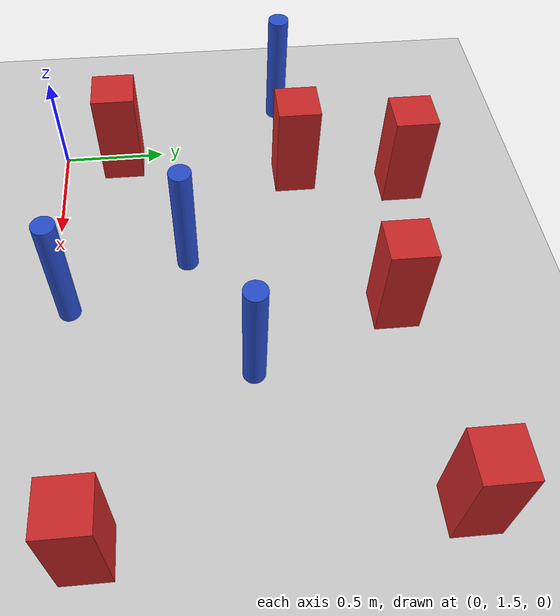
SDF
<sdf version="1.6">
 <world name="default">
  <model name="ground_plane">
   <static>1</static>
   <link name="link">
    <collision name="collision">
     <geometry><plane><normal>0 0 1</normal><size>100 100</size></plane></geometry>
     <surface><friction><ode><mu>100</mu><mu2>50</mu2></ode></friction></surface>
    </collision>
    <visual name="visual">
     <cast_shadows>0</cast_shadows>
     <geometry><plane><normal>0 0 1</normal><size>100 100</size></plane></geometry>
     <material>
      <ambient>1.0 1.0 1.0 1.0</ambient>
      <diffuse>0.8 0.8 0.8 1.0</diffuse>
      <specular>0.01 0.01 0.01 1.000000</specular>
     </material>
    </visual>
   </link>
  </model>
  <model name="square_post_obstacle11">
   <static>true</static>
   <pose>2.00786837578 3.1188918921 1.91545236811e-07 -7.35059704564e-06 1.12565212e-07 2.39332434364e-05</pose>
   <link name="link">
    <pose>0 0 0.25 0 -0 0</pose>
    <inertial>
     <mass>100</mass>
     <inertia>
      <ixx>0.166667</ixx>
      <ixy>0</ixy>
      <ixz>0</ixz>
      <iyy>0.166667</iyy>
      <iyz>0</iyz>
      <izz>0.166667</izz>
     </inertia>
    </inertial>
    <collision name="collision"><geometry><box><size>.2 .2 .5</size></box></geometry></collision>
    <visual name="visual">
     <geometry><box><size>.2 .2 .5</size></box></geometry>
     <material>
      <script><name>Gazebo/Red</name><uri>file://media/materials/scripts/gazebo.material</uri></script>
     </material>
    </visual>
   </link>
  </model>
  <model name="square_post_obstacle13">
   <static>true</static>
   <pose>0.330037371292 3.20440158988 1.91545236811e-07 -7.35059704564e-06 1.12565212e-07 2.39332434364e-05</pose>
   <link name="link">
    <pose>0 0 0.25 0 -0 0</pose>
    <inertial>
     <mass>100</mass>
     <inertia>
      <ixx>0.166667</ixx>
      <ixy>0</ixy>
      <ixz>0</ixz>
      <iyy>0.166667</iyy>
      <iyz>0</iyz>
      <izz>0.166667</izz>
     </inertia>
    </inertial>
    <collision name="collision"><geometry><box><size>.2 .2 .5</size></box></geometry></collision>
    <visual name="visual">
     <geometry><box><size>.2 .2 .5</size></box></geometry>
     <material>
      <script><name>Gazebo/Red</name><uri>file://media/materials/scripts/gazebo.material</uri></script>
     </material>
    </visual>
   </link>
  </model>
  <model name="square_post_obstacle94">
   <static>true</static>
   <pose>1.08905697369 3.01801143871 1.91545236811e-07 -7.35059704564e-06 1.12565212e-07 2.39332434364e-05</pose>
   <link name="link">
    <pose>0 0 0.25 0 -0 0</pose>
    <inertial>
     <mass>100</mass>
     <inertia>
      <ixx>0.166667</ixx>
      <ixy>0</ixy>
      <ixz>0</ixz>
      <iyy>0.166667</iyy>
      <iyz>0</iyz>
      <izz>0.166667</izz>
     </inertia>
    </inertial>
    <collision name="collision"><geometry><box><size>.2 .2 .5</size></box></geometry></collision>
    <visual name="visual">
     <geometry><box><size>.2 .2 .5</size></box></geometry>
     <material>
      <script><name>Gazebo/Red</name><uri>file://media/materials/scripts/gazebo.material</uri></script>
     </material>
    </visual>
   </link>
  </model>
  <model name="pole_obstacle127">
   <static>true</static>
   <pose>0.981365443327 1.56986857597 7.38925637345e-09 -8.47170692798e-08 1.24976764951e-08 -1.74513093022e-07</pose>
   <link name="link">
    <pose>0 0 0.3 0 -0 0</pose>
    <inertial>
     <mass>1</mass>
     <inertia><ixx>0.145833</ixx><ixy>0</ixy><ixz>0</ixz><iyy>0.145833</iyy><iyz>0</iyz><izz>0.125</izz></inertia>
    </inertial>
    <collision name="collision">
     <geometry><cylinder><radius>0.05</radius><length>.6</length></cylinder></geometry>
    </collision>
    <visual name="visual">
     <geometry><cylinder><radius>0.05</radius><length>.6</length></cylinder></geometry>
     <material>
      <script><name>Gazebo/Blue</name><uri>file://media/materials/scripts/gazebo.material</uri></script>
     </material>
    </visual>
   </link>
  </model>
  <model name="square_post_obstacle141">
   <static>true</static>
   <pose>2.05513826678 1.69724402007 1.91545236811e-07 -7.35059704564e-06 1.12565212e-07 2.39332434364e-05</pose>
   <link name="link">
    <pose>0 0 0.25 0 -0 0</pose>
    <inertial>
     <mass>100</mass>
     <inertia>
      <ixx>0.166667</ixx>
      <ixy>0</ixy>
      <ixz>0</ixz>
      <iyy>0.166667</iyy>
      <iyz>0</iyz>
      <izz>0.166667</izz>
     </inertia>
    </inertial>
    <collision name="collision"><geometry><box><size>.2 .2 .5</size></box></geometry></collision>
    <visual name="visual">
     <geometry><box><size>.2 .2 .5</size></box></geometry>
     <material>
      <script><name>Gazebo/Red</name><uri>file://media/materials/scripts/gazebo.material</uri></script>
     </material>
    </visual>
   </link>
  </model>
  <model name="square_post_obstacle149">
   <static>true</static>
   <pose>0.052141131458 1.80300591665 1.91545236811e-07 -7.35059704564e-06 1.12565212e-07 2.39332434364e-05</pose>
   <link name="link">
    <pose>0 0 0.25 0 -0 0</pose>
    <inertial>
     <mass>100</mass>
     <inertia>
      <ixx>0.166667</ixx>
      <ixy>0</ixy>
      <ixz>0</ixz>
      <iyy>0.166667</iyy>
      <iyz>0</iyz>
      <izz>0.166667</izz>
     </inertia>
    </inertial>
    <collision name="collision"><geometry><box><size>.2 .2 .5</size></box></geometry></collision>
    <visual name="visual">
     <geometry><box><size>.2 .2 .5</size></box></geometry>
     <material>
      <script><name>Gazebo/Red</name><uri>file://media/materials/scripts/gazebo.material</uri></script>
     </material>
    </visual>
   </link>
  </model>
  <model name="pole_obstacle159">
   <static>true</static>
   <pose>-0.290497377963 2.63713323006 7.38925637345e-09 -8.471706928e-08 1.24976765139e-08 -1.74513093014e-07</pose>
   <link name="link">
    <pose>0 0 0.3 0 -0 0</pose>
    <inertial>
     <mass>1</mass>
     <inertia><ixx>0.145833</ixx><ixy>0</ixy><ixz>0</ixz><iyy>0.145833</iyy><iyz>0</iyz><izz>0.125</izz></inertia>
    </inertial>
    <collision name="collision">
     <geometry><cylinder><radius>0.05</radius><length>.6</length></cylinder></geometry>
    </collision>
    <visual name="visual">
     <geometry><cylinder><radius>0.05</radius><length>.6</length></cylinder></geometry>
     <material>
      <script><name>Gazebo/Blue</name><uri>file://media/materials/scripts/gazebo.material</uri></script>
     </material>
    </visual>
   </link>
  </model>
  <model name="pole_obstacle197">
   <static>true</static>
   <pose>1.36310422319 2.36747915203 7.38925637345e-09 -8.47170692799e-08 1.24976765053e-08 -1.74513093017e-07</pose>
   <link name="link">
    <pose>0 0 0.3 0 -0 0</pose>
    <inertial>
     <mass>1</mass>
     <inertia><ixx>0.145833</ixx><ixy>0</ixy><ixz>0</ixz><iyy>0.145833</iyy><iyz>0</iyz><izz>0.125</izz></inertia>
    </inertial>
    <collision name="collision">
     <geometry><cylinder><radius>0.05</radius><length>.6</length></cylinder></geometry>
    </collision>
    <visual name="visual">
     <geometry><cylinder><radius>0.05</radius><length>.6</length></cylinder></geometry>
     <material>
      <script><name>Gazebo/Blue</name><uri>file://media/materials/scripts/gazebo.material</uri></script>
     </material>
    </visual>
   </link>
  </model>
  <model name="square_post_obstacle194">
   <static>true</static>
   <pose>0.219517880975 2.67488136091 1.91545236811e-07 -7.35059704564e-06 1.12565212e-07 2.39332434364e-05</pose>
   <link name="link">
    <pose>0 0 0.25 0 -0 0</pose>
    <inertial>
     <mass>100</mass>
     <inertia>
      <ixx>0.166667</ixx>
      <ixy>0</ixy>
      <ixz>0</ixz>
      <iyy>0.166667</iyy>
      <iyz>0</iyz>
      <izz>0.166667</izz>
     </inertia>
    </inertial>
    <collision name="collision"><geometry><box><size>.2 .2 .5</size></box></geometry></collision>
    <visual name="visual">
     <geometry><box><size>.2 .2 .5</size></box></geometry>
     <material>
      <script><name>Gazebo/Red</name><uri>file://media/materials/scripts/gazebo.material</uri></script>
     </material>
    </visual>
   </link>
  </model>
  <model name="pole_obstacle257">
   <static>true</static>
   <pose>0.740468009575 2.10939002078 7.38925637345e-09 -8.47170692793e-08 1.24976764476e-08 -1.74513093037e-07</pose>
   <link name="link">
    <pose>0 0 0.3 0 -0 0</pose>
    <inertial>
     <mass>1</mass>
     <inertia><ixx>0.145833</ixx><ixy>0</ixy><ixz>0</ixz><iyy>0.145833</iyy><iyz>0</iyz><izz>0.125</izz></inertia>
    </inertial>
    <collision name="collision">
     <geometry><cylinder><radius>0.05</radius><length>.6</length></cylinder></geometry>
    </collision>
    <visual name="visual">
     <geometry><cylinder><radius>0.05</radius><length>.6</length></cylinder></geometry>
     <material>
      <script><name>Gazebo/Blue</name><uri>file://media/materials/scripts/gazebo.material</uri></script>
     </material>
    </visual>
   </link>
  </model>
 </world>
</sdf>
